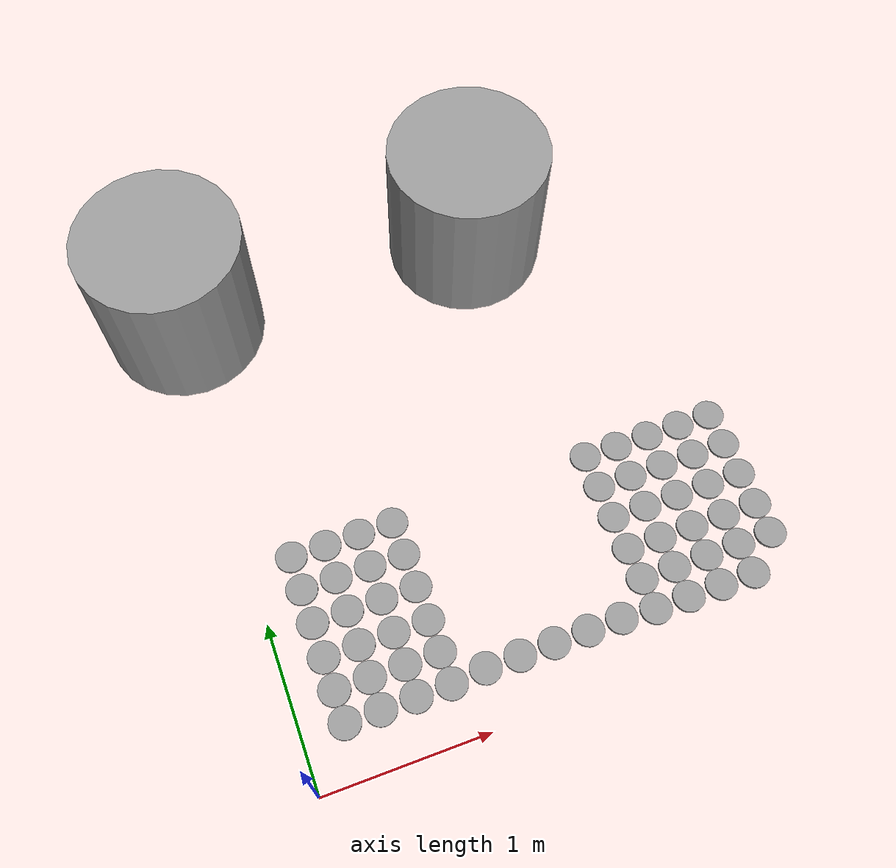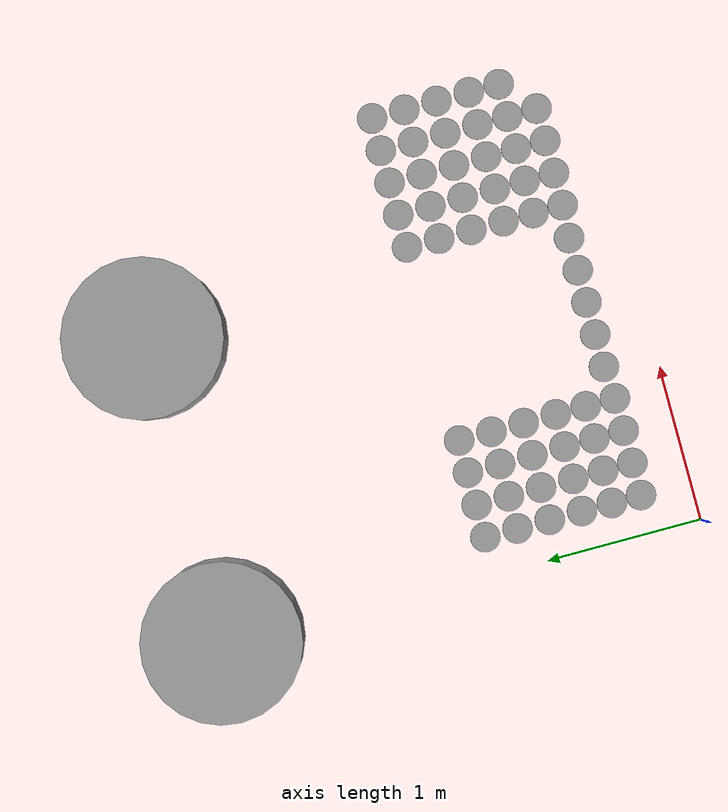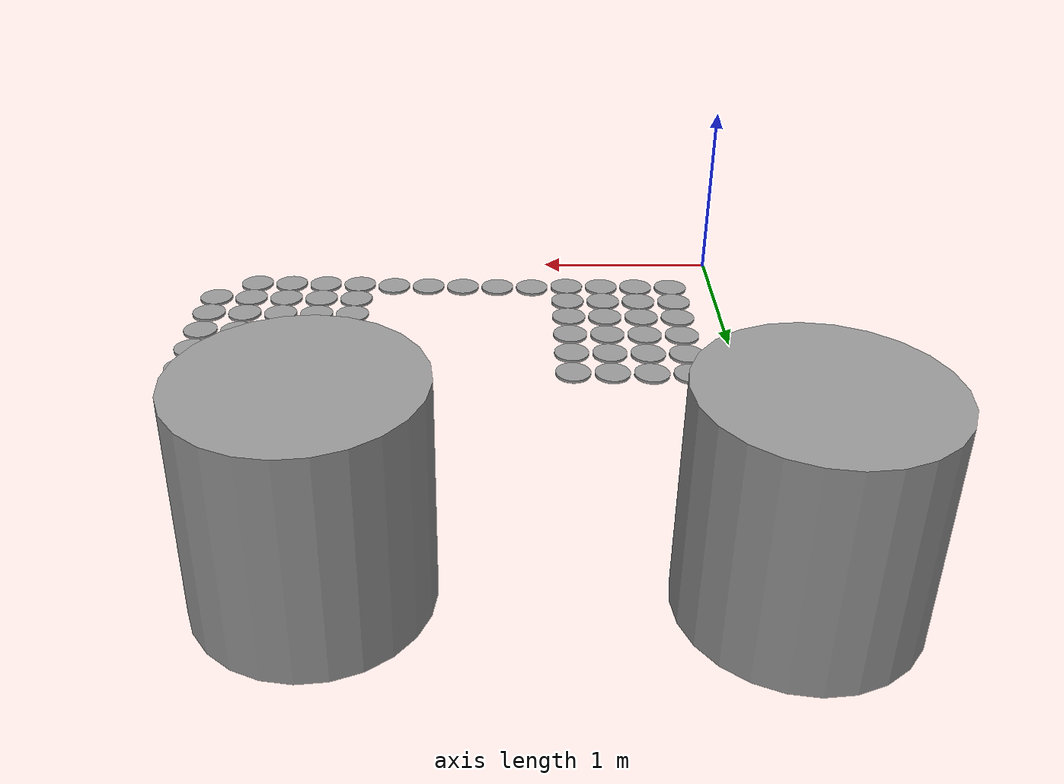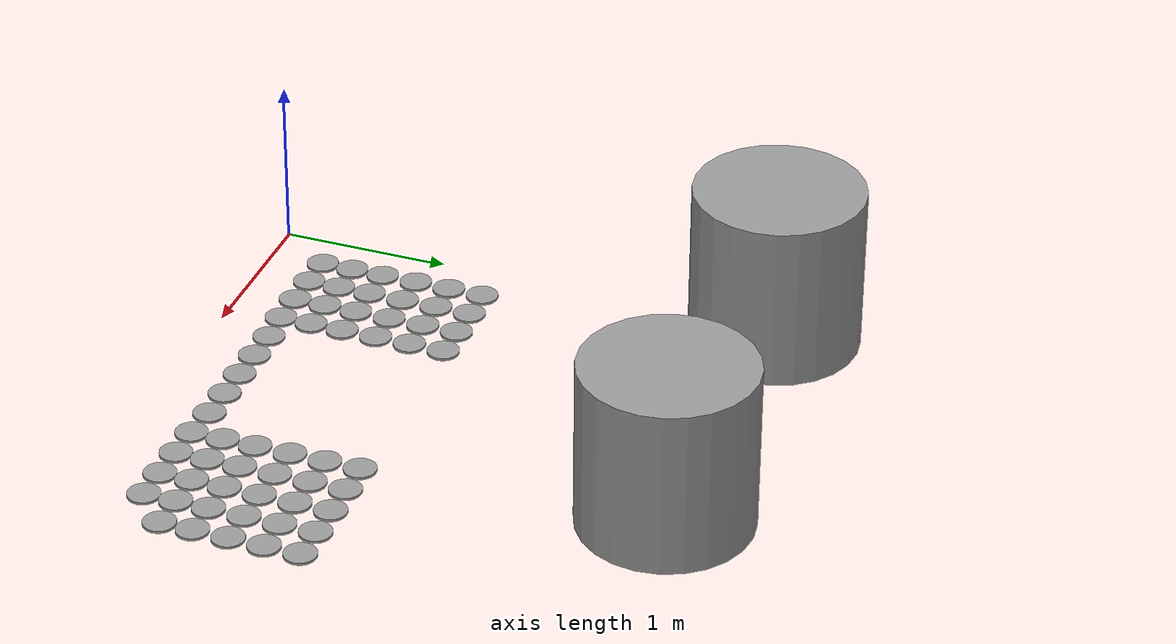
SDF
<sdf version="1.6">
 <world name="default">
  <model name="unit_cylinder_clone_125">
   <pose>0.25 0.515077 0.008117 0 -0 0</pose>
   <link name="link">
    <inertial>
     <mass>1</mass>
     <inertia><ixx>0.145833</ixx><ixy>0</ixy><ixz>0</ixz><iyy>0.145833</iyy><iyz>0</iyz><izz>0.125</izz></inertia>
    </inertial>
    <collision name="collision">
     <geometry><cylinder><radius>0.0950718</radius><length>0.0162339</length></cylinder></geometry>
     <max_contacts>5</max_contacts>
    </collision>
    <visual name="visual">
     <geometry><cylinder><radius>0.0950718</radius><length>0.0162339</length></cylinder></geometry>
     <material>
      <script><name>Gazebo/Grey</name><uri>file://media/materials/scripts/gazebo.material</uri></script>
     </material>
    </visual>
   </link>
  </model>
  <model name="unit_cylinder_clone_126">
   <pose>0.25 0.71 0.008117 0 -0 0</pose>
   <link name="link">
    <inertial>
     <mass>1</mass>
     <inertia><ixx>0.145833</ixx><ixy>0</ixy><ixz>0</ixz><iyy>0.145833</iyy><iyz>0</iyz><izz>0.125</izz></inertia>
    </inertial>
    <collision name="collision">
     <geometry><cylinder><radius>0.0950718</radius><length>0.0162339</length></cylinder></geometry>
     <max_contacts>5</max_contacts>
    </collision>
    <visual name="visual">
     <geometry><cylinder><radius>0.0950718</radius><length>0.0162339</length></cylinder></geometry>
     <material>
      <script><name>Gazebo/Grey</name><uri>file://media/materials/scripts/gazebo.material</uri></script>
     </material>
    </visual>
   </link>
  </model>
  <model name="unit_cylinder_clone_127">
   <pose>0.25 0.92 0.008117 0 -0 0</pose>
   <link name="link">
    <inertial>
     <mass>1</mass>
     <inertia><ixx>0.145833</ixx><ixy>0</ixy><ixz>0</ixz><iyy>0.145833</iyy><iyz>0</iyz><izz>0.125</izz></inertia>
    </inertial>
    <collision name="collision">
     <geometry><cylinder><radius>0.0950718</radius><length>0.0162339</length></cylinder></geometry>
     <max_contacts>5</max_contacts>
    </collision>
    <visual name="visual">
     <geometry><cylinder><radius>0.0950718</radius><length>0.0162339</length></cylinder></geometry>
     <material>
      <script><name>Gazebo/Grey</name><uri>file://media/materials/scripts/gazebo.material</uri></script>
     </material>
    </visual>
   </link>
  </model>
  <model name="unit_cylinder_clone_128">
   <pose>0.25 1.13 0.008117 0 -0 0</pose>
   <link name="link">
    <inertial>
     <mass>1</mass>
     <inertia><ixx>0.145833</ixx><ixy>0</ixy><ixz>0</ixz><iyy>0.145833</iyy><iyz>0</iyz><izz>0.125</izz></inertia>
    </inertial>
    <collision name="collision">
     <geometry><cylinder><radius>0.0950718</radius><length>0.0162339</length></cylinder></geometry>
     <max_contacts>5</max_contacts>
    </collision>
    <visual name="visual">
     <geometry><cylinder><radius>0.0950718</radius><length>0.0162339</length></cylinder></geometry>
     <material>
      <script><name>Gazebo/Grey</name><uri>file://media/materials/scripts/gazebo.material</uri></script>
     </material>
    </visual>
   </link>
  </model>
  <model name="unit_cylinder_clone_129">
   <pose>0.25 1.34 0.008117 0 -0 0</pose>
   <link name="link">
    <inertial>
     <mass>1</mass>
     <inertia><ixx>0.145833</ixx><ixy>0</ixy><ixz>0</ixz><iyy>0.145833</iyy><iyz>0</iyz><izz>0.125</izz></inertia>
    </inertial>
    <collision name="collision">
     <geometry><cylinder><radius>0.0950718</radius><length>0.0162339</length></cylinder></geometry>
     <max_contacts>5</max_contacts>
    </collision>
    <visual name="visual">
     <geometry><cylinder><radius>0.0950718</radius><length>0.0162339</length></cylinder></geometry>
     <material>
      <script><name>Gazebo/Grey</name><uri>file://media/materials/scripts/gazebo.material</uri></script>
     </material>
    </visual>
   </link>
  </model>
  <model name="unit_cylinder_clone_130">
   <pose>0.46 0.515077 0.008117 0 -0 0</pose>
   <link name="link">
    <inertial>
     <mass>1</mass>
     <inertia><ixx>0.145833</ixx><ixy>0</ixy><ixz>0</ixz><iyy>0.145833</iyy><iyz>0</iyz><izz>0.125</izz></inertia>
    </inertial>
    <collision name="collision">
     <geometry><cylinder><radius>0.0950718</radius><length>0.0162339</length></cylinder></geometry>
     <max_contacts>5</max_contacts>
    </collision>
    <visual name="visual">
     <geometry><cylinder><radius>0.0950718</radius><length>0.0162339</length></cylinder></geometry>
     <material>
      <script><name>Gazebo/Grey</name><uri>file://media/materials/scripts/gazebo.material</uri></script>
     </material>
    </visual>
   </link>
  </model>
  <model name="unit_cylinder_clone_131">
   <pose>0.46 0.71 0.008117 0 -0 0</pose>
   <link name="link">
    <inertial>
     <mass>1</mass>
     <inertia><ixx>0.145833</ixx><ixy>0</ixy><ixz>0</ixz><iyy>0.145833</iyy><iyz>0</iyz><izz>0.125</izz></inertia>
    </inertial>
    <collision name="collision">
     <geometry><cylinder><radius>0.0950718</radius><length>0.0162339</length></cylinder></geometry>
     <max_contacts>5</max_contacts>
    </collision>
    <visual name="visual">
     <geometry><cylinder><radius>0.0950718</radius><length>0.0162339</length></cylinder></geometry>
     <material>
      <script><name>Gazebo/Grey</name><uri>file://media/materials/scripts/gazebo.material</uri></script>
     </material>
    </visual>
   </link>
  </model>
  <model name="unit_cylinder_clone_132">
   <pose>0.46 0.92 0.008117 0 -0 0</pose>
   <link name="link">
    <inertial>
     <mass>1</mass>
     <inertia><ixx>0.145833</ixx><ixy>0</ixy><ixz>0</ixz><iyy>0.145833</iyy><iyz>0</iyz><izz>0.125</izz></inertia>
    </inertial>
    <collision name="collision">
     <geometry><cylinder><radius>0.0950718</radius><length>0.0162339</length></cylinder></geometry>
     <max_contacts>5</max_contacts>
    </collision>
    <visual name="visual">
     <geometry><cylinder><radius>0.0950718</radius><length>0.0162339</length></cylinder></geometry>
     <material>
      <script><name>Gazebo/Grey</name><uri>file://media/materials/scripts/gazebo.material</uri></script>
     </material>
    </visual>
   </link>
  </model>
  <model name="unit_cylinder_clone_133">
   <pose>0.46 1.13 0.008117 0 -0 0</pose>
   <link name="link">
    <inertial>
     <mass>1</mass>
     <inertia><ixx>0.145833</ixx><ixy>0</ixy><ixz>0</ixz><iyy>0.145833</iyy><iyz>0</iyz><izz>0.125</izz></inertia>
    </inertial>
    <collision name="collision">
     <geometry><cylinder><radius>0.0950718</radius><length>0.0162339</length></cylinder></geometry>
     <max_contacts>5</max_contacts>
    </collision>
    <visual name="visual">
     <geometry><cylinder><radius>0.0950718</radius><length>0.0162339</length></cylinder></geometry>
     <material>
      <script><name>Gazebo/Grey</name><uri>file://media/materials/scripts/gazebo.material</uri></script>
     </material>
    </visual>
   </link>
  </model>
  <model name="unit_cylinder_clone_134">
   <pose>0.46 1.34 0.008117 0 -0 0</pose>
   <link name="link">
    <inertial>
     <mass>1</mass>
     <inertia><ixx>0.145833</ixx><ixy>0</ixy><ixz>0</ixz><iyy>0.145833</iyy><iyz>0</iyz><izz>0.125</izz></inertia>
    </inertial>
    <collision name="collision">
     <geometry><cylinder><radius>0.0950718</radius><length>0.0162339</length></cylinder></geometry>
     <max_contacts>5</max_contacts>
    </collision>
    <visual name="visual">
     <geometry><cylinder><radius>0.0950718</radius><length>0.0162339</length></cylinder></geometry>
     <material>
      <script><name>Gazebo/Grey</name><uri>file://media/materials/scripts/gazebo.material</uri></script>
     </material>
    </visual>
   </link>
  </model>
  <model name="unit_cylinder_clone_135">
   <pose>0.67 0.515077 0.008117 0 -0 0</pose>
   <link name="link">
    <inertial>
     <mass>1</mass>
     <inertia><ixx>0.145833</ixx><ixy>0</ixy><ixz>0</ixz><iyy>0.145833</iyy><iyz>0</iyz><izz>0.125</izz></inertia>
    </inertial>
    <collision name="collision">
     <geometry><cylinder><radius>0.0950718</radius><length>0.0162339</length></cylinder></geometry>
     <max_contacts>5</max_contacts>
    </collision>
    <visual name="visual">
     <geometry><cylinder><radius>0.0950718</radius><length>0.0162339</length></cylinder></geometry>
     <material>
      <script><name>Gazebo/Grey</name><uri>file://media/materials/scripts/gazebo.material</uri></script>
     </material>
    </visual>
   </link>
  </model>
  <model name="unit_cylinder_clone_136">
   <pose>0.67 0.71 0.008117 0 -0 0</pose>
   <link name="link">
    <inertial>
     <mass>1</mass>
     <inertia><ixx>0.145833</ixx><ixy>0</ixy><ixz>0</ixz><iyy>0.145833</iyy><iyz>0</iyz><izz>0.125</izz></inertia>
    </inertial>
    <collision name="collision">
     <geometry><cylinder><radius>0.0950718</radius><length>0.0162339</length></cylinder></geometry>
     <max_contacts>5</max_contacts>
    </collision>
    <visual name="visual">
     <geometry><cylinder><radius>0.0950718</radius><length>0.0162339</length></cylinder></geometry>
     <material>
      <script><name>Gazebo/Grey</name><uri>file://media/materials/scripts/gazebo.material</uri></script>
     </material>
    </visual>
   </link>
  </model>
  <model name="unit_cylinder_clone_137">
   <pose>0.67 0.92 0.008117 0 -0 0</pose>
   <link name="link">
    <inertial>
     <mass>1</mass>
     <inertia><ixx>0.145833</ixx><ixy>0</ixy><ixz>0</ixz><iyy>0.145833</iyy><iyz>0</iyz><izz>0.125</izz></inertia>
    </inertial>
    <collision name="collision">
     <geometry><cylinder><radius>0.0950718</radius><length>0.0162339</length></cylinder></geometry>
     <max_contacts>5</max_contacts>
    </collision>
    <visual name="visual">
     <geometry><cylinder><radius>0.0950718</radius><length>0.0162339</length></cylinder></geometry>
     <material>
      <script><name>Gazebo/Grey</name><uri>file://media/materials/scripts/gazebo.material</uri></script>
     </material>
    </visual>
   </link>
  </model>
  <model name="unit_cylinder_clone_138">
   <pose>0.67 1.13 0.008117 0 -0 0</pose>
   <link name="link">
    <inertial>
     <mass>1</mass>
     <inertia><ixx>0.145833</ixx><ixy>0</ixy><ixz>0</ixz><iyy>0.145833</iyy><iyz>0</iyz><izz>0.125</izz></inertia>
    </inertial>
    <collision name="collision">
     <geometry><cylinder><radius>0.0950718</radius><length>0.0162339</length></cylinder></geometry>
     <max_contacts>5</max_contacts>
    </collision>
    <visual name="visual">
     <geometry><cylinder><radius>0.0950718</radius><length>0.0162339</length></cylinder></geometry>
     <material>
      <script><name>Gazebo/Grey</name><uri>file://media/materials/scripts/gazebo.material</uri></script>
     </material>
    </visual>
   </link>
  </model>
  <model name="unit_cylinder_clone_139">
   <pose>0.67 1.34 0.008117 0 -0 0</pose>
   <link name="link">
    <inertial>
     <mass>1</mass>
     <inertia><ixx>0.145833</ixx><ixy>0</ixy><ixz>0</ixz><iyy>0.145833</iyy><iyz>0</iyz><izz>0.125</izz></inertia>
    </inertial>
    <collision name="collision">
     <geometry><cylinder><radius>0.0950718</radius><length>0.0162339</length></cylinder></geometry>
     <max_contacts>5</max_contacts>
    </collision>
    <visual name="visual">
     <geometry><cylinder><radius>0.0950718</radius><length>0.0162339</length></cylinder></geometry>
     <material>
      <script><name>Gazebo/Grey</name><uri>file://media/materials/scripts/gazebo.material</uri></script>
     </material>
    </visual>
   </link>
  </model>
  <model name="unit_cylinder_clone_140">
   <pose>0.88 0.515077 0.008117 0 -0 0</pose>
   <link name="link">
    <inertial>
     <mass>1</mass>
     <inertia><ixx>0.145833</ixx><ixy>0</ixy><ixz>0</ixz><iyy>0.145833</iyy><iyz>0</iyz><izz>0.125</izz></inertia>
    </inertial>
    <collision name="collision">
     <geometry><cylinder><radius>0.0950718</radius><length>0.0162339</length></cylinder></geometry>
     <max_contacts>5</max_contacts>
    </collision>
    <visual name="visual">
     <geometry><cylinder><radius>0.0950718</radius><length>0.0162339</length></cylinder></geometry>
     <material>
      <script><name>Gazebo/Grey</name><uri>file://media/materials/scripts/gazebo.material</uri></script>
     </material>
    </visual>
   </link>
  </model>
  <model name="unit_cylinder_clone_141">
   <pose>0.88 0.71 0.008117 0 -0 0</pose>
   <link name="link">
    <inertial>
     <mass>1</mass>
     <inertia><ixx>0.145833</ixx><ixy>0</ixy><ixz>0</ixz><iyy>0.145833</iyy><iyz>0</iyz><izz>0.125</izz></inertia>
    </inertial>
    <collision name="collision">
     <geometry><cylinder><radius>0.0950718</radius><length>0.0162339</length></cylinder></geometry>
     <max_contacts>5</max_contacts>
    </collision>
    <visual name="visual">
     <geometry><cylinder><radius>0.0950718</radius><length>0.0162339</length></cylinder></geometry>
     <material>
      <script><name>Gazebo/Grey</name><uri>file://media/materials/scripts/gazebo.material</uri></script>
     </material>
    </visual>
   </link>
  </model>
  <model name="unit_cylinder_clone_142">
   <pose>0.88 0.92 0.008117 0 -0 0</pose>
   <link name="link">
    <inertial>
     <mass>1</mass>
     <inertia><ixx>0.145833</ixx><ixy>0</ixy><ixz>0</ixz><iyy>0.145833</iyy><iyz>0</iyz><izz>0.125</izz></inertia>
    </inertial>
    <collision name="collision">
     <geometry><cylinder><radius>0.0950718</radius><length>0.0162339</length></cylinder></geometry>
     <max_contacts>5</max_contacts>
    </collision>
    <visual name="visual">
     <geometry><cylinder><radius>0.0950718</radius><length>0.0162339</length></cylinder></geometry>
     <material>
      <script><name>Gazebo/Grey</name><uri>file://media/materials/scripts/gazebo.material</uri></script>
     </material>
    </visual>
   </link>
  </model>
  <model name="unit_cylinder_clone_143">
   <pose>0.88 1.13 0.008117 0 -0 0</pose>
   <link name="link">
    <inertial>
     <mass>1</mass>
     <inertia><ixx>0.145833</ixx><ixy>0</ixy><ixz>0</ixz><iyy>0.145833</iyy><iyz>0</iyz><izz>0.125</izz></inertia>
    </inertial>
    <collision name="collision">
     <geometry><cylinder><radius>0.0950718</radius><length>0.0162339</length></cylinder></geometry>
     <max_contacts>5</max_contacts>
    </collision>
    <visual name="visual">
     <geometry><cylinder><radius>0.0950718</radius><length>0.0162339</length></cylinder></geometry>
     <material>
      <script><name>Gazebo/Grey</name><uri>file://media/materials/scripts/gazebo.material</uri></script>
     </material>
    </visual>
   </link>
  </model>
  <model name="unit_cylinder_clone_144">
   <pose>0.88 1.34 0.008117 0 -0 0</pose>
   <link name="link">
    <inertial>
     <mass>1</mass>
     <inertia><ixx>0.145833</ixx><ixy>0</ixy><ixz>0</ixz><iyy>0.145833</iyy><iyz>0</iyz><izz>0.125</izz></inertia>
    </inertial>
    <collision name="collision">
     <geometry><cylinder><radius>0.0950718</radius><length>0.0162339</length></cylinder></geometry>
     <max_contacts>5</max_contacts>
    </collision>
    <visual name="visual">
     <geometry><cylinder><radius>0.0950718</radius><length>0.0162339</length></cylinder></geometry>
     <material>
      <script><name>Gazebo/Grey</name><uri>file://media/materials/scripts/gazebo.material</uri></script>
     </material>
    </visual>
   </link>
  </model>
  <model name="unit_cylinder_clone_170">
   <pose>2.14 0.515077 0.008117 0 -0 0</pose>
   <link name="link">
    <inertial>
     <mass>1</mass>
     <inertia><ixx>0.145833</ixx><ixy>0</ixy><ixz>0</ixz><iyy>0.145833</iyy><iyz>0</iyz><izz>0.125</izz></inertia>
    </inertial>
    <collision name="collision">
     <geometry><cylinder><radius>0.0950718</radius><length>0.0162339</length></cylinder></geometry>
     <max_contacts>5</max_contacts>
    </collision>
    <visual name="visual">
     <geometry><cylinder><radius>0.0950718</radius><length>0.0162339</length></cylinder></geometry>
     <material>
      <script><name>Gazebo/Grey</name><uri>file://media/materials/scripts/gazebo.material</uri></script>
     </material>
    </visual>
   </link>
  </model>
  <model name="unit_cylinder_clone_171">
   <pose>2.14 0.71 0.008117 0 -0 0</pose>
   <link name="link">
    <inertial>
     <mass>1</mass>
     <inertia><ixx>0.145833</ixx><ixy>0</ixy><ixz>0</ixz><iyy>0.145833</iyy><iyz>0</iyz><izz>0.125</izz></inertia>
    </inertial>
    <collision name="collision">
     <geometry><cylinder><radius>0.0950718</radius><length>0.0162339</length></cylinder></geometry>
     <max_contacts>5</max_contacts>
    </collision>
    <visual name="visual">
     <geometry><cylinder><radius>0.0950718</radius><length>0.0162339</length></cylinder></geometry>
     <material>
      <script><name>Gazebo/Grey</name><uri>file://media/materials/scripts/gazebo.material</uri></script>
     </material>
    </visual>
   </link>
  </model>
  <model name="unit_cylinder_clone_172">
   <pose>2.14 0.92 0.008117 0 -0 0</pose>
   <link name="link">
    <inertial>
     <mass>1</mass>
     <inertia><ixx>0.145833</ixx><ixy>0</ixy><ixz>0</ixz><iyy>0.145833</iyy><iyz>0</iyz><izz>0.125</izz></inertia>
    </inertial>
    <collision name="collision">
     <geometry><cylinder><radius>0.0950718</radius><length>0.0162339</length></cylinder></geometry>
     <max_contacts>5</max_contacts>
    </collision>
    <visual name="visual">
     <geometry><cylinder><radius>0.0950718</radius><length>0.0162339</length></cylinder></geometry>
     <material>
      <script><name>Gazebo/Grey</name><uri>file://media/materials/scripts/gazebo.material</uri></script>
     </material>
    </visual>
   </link>
  </model>
  <model name="unit_cylinder_clone_173">
   <pose>2.14 1.13 0.008117 0 -0 0</pose>
   <link name="link">
    <inertial>
     <mass>1</mass>
     <inertia><ixx>0.145833</ixx><ixy>0</ixy><ixz>0</ixz><iyy>0.145833</iyy><iyz>0</iyz><izz>0.125</izz></inertia>
    </inertial>
    <collision name="collision">
     <geometry><cylinder><radius>0.0950718</radius><length>0.0162339</length></cylinder></geometry>
     <max_contacts>5</max_contacts>
    </collision>
    <visual name="visual">
     <geometry><cylinder><radius>0.0950718</radius><length>0.0162339</length></cylinder></geometry>
     <material>
      <script><name>Gazebo/Grey</name><uri>file://media/materials/scripts/gazebo.material</uri></script>
     </material>
    </visual>
   </link>
  </model>
  <model name="unit_cylinder_clone_174">
   <pose>2.14 1.34 0.008117 0 -0 0</pose>
   <link name="link">
    <inertial>
     <mass>1</mass>
     <inertia><ixx>0.145833</ixx><ixy>0</ixy><ixz>0</ixz><iyy>0.145833</iyy><iyz>0</iyz><izz>0.125</izz></inertia>
    </inertial>
    <collision name="collision">
     <geometry><cylinder><radius>0.0950718</radius><length>0.0162339</length></cylinder></geometry>
     <max_contacts>5</max_contacts>
    </collision>
    <visual name="visual">
     <geometry><cylinder><radius>0.0950718</radius><length>0.0162339</length></cylinder></geometry>
     <material>
      <script><name>Gazebo/Grey</name><uri>file://media/materials/scripts/gazebo.material</uri></script>
     </material>
    </visual>
   </link>
  </model>
  <model name="unit_cylinder_clone_175">
   <pose>2.35 0.515077 0.008117 0 -0 0</pose>
   <link name="link">
    <inertial>
     <mass>1</mass>
     <inertia><ixx>0.145833</ixx><ixy>0</ixy><ixz>0</ixz><iyy>0.145833</iyy><iyz>0</iyz><izz>0.125</izz></inertia>
    </inertial>
    <collision name="collision">
     <geometry><cylinder><radius>0.0950718</radius><length>0.0162339</length></cylinder></geometry>
     <max_contacts>5</max_contacts>
    </collision>
    <visual name="visual">
     <geometry><cylinder><radius>0.0950718</radius><length>0.0162339</length></cylinder></geometry>
     <material>
      <script><name>Gazebo/Grey</name><uri>file://media/materials/scripts/gazebo.material</uri></script>
     </material>
    </visual>
   </link>
  </model>
  <model name="unit_cylinder_clone_176">
   <pose>2.35 0.71 0.008117 0 -0 0</pose>
   <link name="link">
    <inertial>
     <mass>1</mass>
     <inertia><ixx>0.145833</ixx><ixy>0</ixy><ixz>0</ixz><iyy>0.145833</iyy><iyz>0</iyz><izz>0.125</izz></inertia>
    </inertial>
    <collision name="collision">
     <geometry><cylinder><radius>0.0950718</radius><length>0.0162339</length></cylinder></geometry>
     <max_contacts>5</max_contacts>
    </collision>
    <visual name="visual">
     <geometry><cylinder><radius>0.0950718</radius><length>0.0162339</length></cylinder></geometry>
     <material>
      <script><name>Gazebo/Grey</name><uri>file://media/materials/scripts/gazebo.material</uri></script>
     </material>
    </visual>
   </link>
  </model>
  <model name="unit_cylinder_clone_177">
   <pose>2.35 0.92 0.008117 0 -0 0</pose>
   <link name="link">
    <inertial>
     <mass>1</mass>
     <inertia><ixx>0.145833</ixx><ixy>0</ixy><ixz>0</ixz><iyy>0.145833</iyy><iyz>0</iyz><izz>0.125</izz></inertia>
    </inertial>
    <collision name="collision">
     <geometry><cylinder><radius>0.0950718</radius><length>0.0162339</length></cylinder></geometry>
     <max_contacts>5</max_contacts>
    </collision>
    <visual name="visual">
     <geometry><cylinder><radius>0.0950718</radius><length>0.0162339</length></cylinder></geometry>
     <material>
      <script><name>Gazebo/Grey</name><uri>file://media/materials/scripts/gazebo.material</uri></script>
     </material>
    </visual>
   </link>
  </model>
  <model name="unit_cylinder_clone_178">
   <pose>2.35 1.13 0.008117 0 -0 0</pose>
   <link name="link">
    <inertial>
     <mass>1</mass>
     <inertia><ixx>0.145833</ixx><ixy>0</ixy><ixz>0</ixz><iyy>0.145833</iyy><iyz>0</iyz><izz>0.125</izz></inertia>
    </inertial>
    <collision name="collision">
     <geometry><cylinder><radius>0.0950718</radius><length>0.0162339</length></cylinder></geometry>
     <max_contacts>5</max_contacts>
    </collision>
    <visual name="visual">
     <geometry><cylinder><radius>0.0950718</radius><length>0.0162339</length></cylinder></geometry>
     <material>
      <script><name>Gazebo/Grey</name><uri>file://media/materials/scripts/gazebo.material</uri></script>
     </material>
    </visual>
   </link>
  </model>
  <model name="unit_cylinder_clone_179">
   <pose>2.35 1.34 0.008117 0 -0 0</pose>
   <link name="link">
    <inertial>
     <mass>1</mass>
     <inertia><ixx>0.145833</ixx><ixy>0</ixy><ixz>0</ixz><iyy>0.145833</iyy><iyz>0</iyz><izz>0.125</izz></inertia>
    </inertial>
    <collision name="collision">
     <geometry><cylinder><radius>0.0950718</radius><length>0.0162339</length></cylinder></geometry>
     <max_contacts>5</max_contacts>
    </collision>
    <visual name="visual">
     <geometry><cylinder><radius>0.0950718</radius><length>0.0162339</length></cylinder></geometry>
     <material>
      <script><name>Gazebo/Grey</name><uri>file://media/materials/scripts/gazebo.material</uri></script>
     </material>
    </visual>
   </link>
  </model>
  <model name="unit_cylinder_clone_180">
   <pose>2.56 0.515077 0.008117 0 -0 0</pose>
   <link name="link">
    <inertial>
     <mass>1</mass>
     <inertia><ixx>0.145833</ixx><ixy>0</ixy><ixz>0</ixz><iyy>0.145833</iyy><iyz>0</iyz><izz>0.125</izz></inertia>
    </inertial>
    <collision name="collision">
     <geometry><cylinder><radius>0.0950718</radius><length>0.0162339</length></cylinder></geometry>
     <max_contacts>5</max_contacts>
    </collision>
    <visual name="visual">
     <geometry><cylinder><radius>0.0950718</radius><length>0.0162339</length></cylinder></geometry>
     <material>
      <script><name>Gazebo/Grey</name><uri>file://media/materials/scripts/gazebo.material</uri></script>
     </material>
    </visual>
   </link>
  </model>
  <model name="unit_cylinder_clone_181">
   <pose>2.56 0.71 0.008117 0 -0 0</pose>
   <link name="link">
    <inertial>
     <mass>1</mass>
     <inertia><ixx>0.145833</ixx><ixy>0</ixy><ixz>0</ixz><iyy>0.145833</iyy><iyz>0</iyz><izz>0.125</izz></inertia>
    </inertial>
    <collision name="collision">
     <geometry><cylinder><radius>0.0950718</radius><length>0.0162339</length></cylinder></geometry>
     <max_contacts>5</max_contacts>
    </collision>
    <visual name="visual">
     <geometry><cylinder><radius>0.0950718</radius><length>0.0162339</length></cylinder></geometry>
     <material>
      <script><name>Gazebo/Grey</name><uri>file://media/materials/scripts/gazebo.material</uri></script>
     </material>
    </visual>
   </link>
  </model>
  <model name="unit_cylinder_clone_182">
   <pose>2.56 0.92 0.008117 0 -0 0</pose>
   <link name="link">
    <inertial>
     <mass>1</mass>
     <inertia><ixx>0.145833</ixx><ixy>0</ixy><ixz>0</ixz><iyy>0.145833</iyy><iyz>0</iyz><izz>0.125</izz></inertia>
    </inertial>
    <collision name="collision">
     <geometry><cylinder><radius>0.0950718</radius><length>0.0162339</length></cylinder></geometry>
     <max_contacts>5</max_contacts>
    </collision>
    <visual name="visual">
     <geometry><cylinder><radius>0.0950718</radius><length>0.0162339</length></cylinder></geometry>
     <material>
      <script><name>Gazebo/Grey</name><uri>file://media/materials/scripts/gazebo.material</uri></script>
     </material>
    </visual>
   </link>
  </model>
  <model name="unit_cylinder_clone_183">
   <pose>2.56 1.13 0.008117 0 -0 0</pose>
   <link name="link">
    <inertial>
     <mass>1</mass>
     <inertia><ixx>0.145833</ixx><ixy>0</ixy><ixz>0</ixz><iyy>0.145833</iyy><iyz>0</iyz><izz>0.125</izz></inertia>
    </inertial>
    <collision name="collision">
     <geometry><cylinder><radius>0.0950718</radius><length>0.0162339</length></cylinder></geometry>
     <max_contacts>5</max_contacts>
    </collision>
    <visual name="visual">
     <geometry><cylinder><radius>0.0950718</radius><length>0.0162339</length></cylinder></geometry>
     <material>
      <script><name>Gazebo/Grey</name><uri>file://media/materials/scripts/gazebo.material</uri></script>
     </material>
    </visual>
   </link>
  </model>
  <model name="unit_cylinder_clone_184">
   <pose>2.56 1.34 0.008117 0 -0 0</pose>
   <link name="link">
    <inertial>
     <mass>1</mass>
     <inertia><ixx>0.145833</ixx><ixy>0</ixy><ixz>0</ixz><iyy>0.145833</iyy><iyz>0</iyz><izz>0.125</izz></inertia>
    </inertial>
    <collision name="collision">
     <geometry><cylinder><radius>0.0950718</radius><length>0.0162339</length></cylinder></geometry>
     <max_contacts>5</max_contacts>
    </collision>
    <visual name="visual">
     <geometry><cylinder><radius>0.0950718</radius><length>0.0162339</length></cylinder></geometry>
     <material>
      <script><name>Gazebo/Grey</name><uri>file://media/materials/scripts/gazebo.material</uri></script>
     </material>
    </visual>
   </link>
  </model>
  <model name="unit_cylinder_clone_185">
   <pose>2.77 0.515077 0.008117 0 -0 0</pose>
   <link name="link">
    <inertial>
     <mass>1</mass>
     <inertia><ixx>0.145833</ixx><ixy>0</ixy><ixz>0</ixz><iyy>0.145833</iyy><iyz>0</iyz><izz>0.125</izz></inertia>
    </inertial>
    <collision name="collision">
     <geometry><cylinder><radius>0.0950718</radius><length>0.0162339</length></cylinder></geometry>
     <max_contacts>5</max_contacts>
    </collision>
    <visual name="visual">
     <geometry><cylinder><radius>0.0950718</radius><length>0.0162339</length></cylinder></geometry>
     <material>
      <script><name>Gazebo/Grey</name><uri>file://media/materials/scripts/gazebo.material</uri></script>
     </material>
    </visual>
   </link>
  </model>
  <model name="unit_cylinder_clone_186">
   <pose>2.77 0.71 0.008117 0 -0 0</pose>
   <link name="link">
    <inertial>
     <mass>1</mass>
     <inertia><ixx>0.145833</ixx><ixy>0</ixy><ixz>0</ixz><iyy>0.145833</iyy><iyz>0</iyz><izz>0.125</izz></inertia>
    </inertial>
    <collision name="collision">
     <geometry><cylinder><radius>0.0950718</radius><length>0.0162339</length></cylinder></geometry>
     <max_contacts>5</max_contacts>
    </collision>
    <visual name="visual">
     <geometry><cylinder><radius>0.0950718</radius><length>0.0162339</length></cylinder></geometry>
     <material>
      <script><name>Gazebo/Grey</name><uri>file://media/materials/scripts/gazebo.material</uri></script>
     </material>
    </visual>
   </link>
  </model>
  <model name="unit_cylinder_clone_187">
   <pose>2.77 0.92 0.008117 0 -0 0</pose>
   <link name="link">
    <inertial>
     <mass>1</mass>
     <inertia><ixx>0.145833</ixx><ixy>0</ixy><ixz>0</ixz><iyy>0.145833</iyy><iyz>0</iyz><izz>0.125</izz></inertia>
    </inertial>
    <collision name="collision">
     <geometry><cylinder><radius>0.0950718</radius><length>0.0162339</length></cylinder></geometry>
     <max_contacts>5</max_contacts>
    </collision>
    <visual name="visual">
     <geometry><cylinder><radius>0.0950718</radius><length>0.0162339</length></cylinder></geometry>
     <material>
      <script><name>Gazebo/Grey</name><uri>file://media/materials/scripts/gazebo.material</uri></script>
     </material>
    </visual>
   </link>
  </model>
  <model name="unit_cylinder_clone_188">
   <pose>2.77 1.13 0.008117 0 -0 0</pose>
   <link name="link">
    <inertial>
     <mass>1</mass>
     <inertia><ixx>0.145833</ixx><ixy>0</ixy><ixz>0</ixz><iyy>0.145833</iyy><iyz>0</iyz><izz>0.125</izz></inertia>
    </inertial>
    <collision name="collision">
     <geometry><cylinder><radius>0.0950718</radius><length>0.0162339</length></cylinder></geometry>
     <max_contacts>5</max_contacts>
    </collision>
    <visual name="visual">
     <geometry><cylinder><radius>0.0950718</radius><length>0.0162339</length></cylinder></geometry>
     <material>
      <script><name>Gazebo/Grey</name><uri>file://media/materials/scripts/gazebo.material</uri></script>
     </material>
    </visual>
   </link>
  </model>
  <model name="unit_cylinder_clone_189">
   <pose>2.77 1.34 0.008117 0 -0 0</pose>
   <link name="link">
    <inertial>
     <mass>1</mass>
     <inertia><ixx>0.145833</ixx><ixy>0</ixy><ixz>0</ixz><iyy>0.145833</iyy><iyz>0</iyz><izz>0.125</izz></inertia>
    </inertial>
    <collision name="collision">
     <geometry><cylinder><radius>0.0950718</radius><length>0.0162339</length></cylinder></geometry>
     <max_contacts>5</max_contacts>
    </collision>
    <visual name="visual">
     <geometry><cylinder><radius>0.0950718</radius><length>0.0162339</length></cylinder></geometry>
     <material>
      <script><name>Gazebo/Grey</name><uri>file://media/materials/scripts/gazebo.material</uri></script>
     </material>
    </visual>
   </link>
  </model>
  <model name="unit_cylinder_clone_190">
   <pose>2.98 0.515077 0.008117 0 -0 0</pose>
   <link name="link">
    <inertial>
     <mass>1</mass>
     <inertia><ixx>0.145833</ixx><ixy>0</ixy><ixz>0</ixz><iyy>0.145833</iyy><iyz>0</iyz><izz>0.125</izz></inertia>
    </inertial>
    <collision name="collision">
     <geometry><cylinder><radius>0.0950718</radius><length>0.0162339</length></cylinder></geometry>
     <max_contacts>5</max_contacts>
    </collision>
    <visual name="visual">
     <geometry><cylinder><radius>0.0950718</radius><length>0.0162339</length></cylinder></geometry>
     <material>
      <script><name>Gazebo/Grey</name><uri>file://media/materials/scripts/gazebo.material</uri></script>
     </material>
    </visual>
   </link>
  </model>
  <model name="unit_cylinder_clone_191">
   <pose>2.98 0.71 0.008117 0 -0 0</pose>
   <link name="link">
    <inertial>
     <mass>1</mass>
     <inertia><ixx>0.145833</ixx><ixy>0</ixy><ixz>0</ixz><iyy>0.145833</iyy><iyz>0</iyz><izz>0.125</izz></inertia>
    </inertial>
    <collision name="collision">
     <geometry><cylinder><radius>0.0950718</radius><length>0.0162339</length></cylinder></geometry>
     <max_contacts>5</max_contacts>
    </collision>
    <visual name="visual">
     <geometry><cylinder><radius>0.0950718</radius><length>0.0162339</length></cylinder></geometry>
     <material>
      <script><name>Gazebo/Grey</name><uri>file://media/materials/scripts/gazebo.material</uri></script>
     </material>
    </visual>
   </link>
  </model>
  <model name="unit_cylinder_clone_192">
   <pose>2.98 0.92 0.008117 0 -0 0</pose>
   <link name="link">
    <inertial>
     <mass>1</mass>
     <inertia><ixx>0.145833</ixx><ixy>0</ixy><ixz>0</ixz><iyy>0.145833</iyy><iyz>0</iyz><izz>0.125</izz></inertia>
    </inertial>
    <collision name="collision">
     <geometry><cylinder><radius>0.0950718</radius><length>0.0162339</length></cylinder></geometry>
     <max_contacts>5</max_contacts>
    </collision>
    <visual name="visual">
     <geometry><cylinder><radius>0.0950718</radius><length>0.0162339</length></cylinder></geometry>
     <material>
      <script><name>Gazebo/Grey</name><uri>file://media/materials/scripts/gazebo.material</uri></script>
     </material>
    </visual>
   </link>
  </model>
  <model name="unit_cylinder_clone_193">
   <pose>2.98 1.13 0.008117 0 -0 0</pose>
   <link name="link">
    <inertial>
     <mass>1</mass>
     <inertia><ixx>0.145833</ixx><ixy>0</ixy><ixz>0</ixz><iyy>0.145833</iyy><iyz>0</iyz><izz>0.125</izz></inertia>
    </inertial>
    <collision name="collision">
     <geometry><cylinder><radius>0.0950718</radius><length>0.0162339</length></cylinder></geometry>
     <max_contacts>5</max_contacts>
    </collision>
    <visual name="visual">
     <geometry><cylinder><radius>0.0950718</radius><length>0.0162339</length></cylinder></geometry>
     <material>
      <script><name>Gazebo/Grey</name><uri>file://media/materials/scripts/gazebo.material</uri></script>
     </material>
    </visual>
   </link>
  </model>
  <model name="unit_cylinder_clone_194">
   <pose>2.98 1.34 0.008117 0 -0 0</pose>
   <link name="link">
    <inertial>
     <mass>1</mass>
     <inertia><ixx>0.145833</ixx><ixy>0</ixy><ixz>0</ixz><iyy>0.145833</iyy><iyz>0</iyz><izz>0.125</izz></inertia>
    </inertial>
    <collision name="collision">
     <geometry><cylinder><radius>0.0950718</radius><length>0.0162339</length></cylinder></geometry>
     <max_contacts>5</max_contacts>
    </collision>
    <visual name="visual">
     <geometry><cylinder><radius>0.0950718</radius><length>0.0162339</length></cylinder></geometry>
     <material>
      <script><name>Gazebo/Grey</name><uri>file://media/materials/scripts/gazebo.material</uri></script>
     </material>
    </visual>
   </link>
  </model>
  <model name="unit_cylinder_clone_379">
   <pose>0.25 0.324923 0.008117 -0 -0 -0</pose>
   <link name="link">
    <inertial>
     <mass>1</mass>
     <inertia><ixx>0.145833</ixx><ixy>0</ixy><ixz>0</ixz><iyy>0.145833</iyy><iyz>0</iyz><izz>0.125</izz></inertia>
    </inertial>
    <collision name="collision">
     <geometry><cylinder><radius>0.0950718</radius><length>0.0162339</length></cylinder></geometry>
     <max_contacts>5</max_contacts>
    </collision>
    <visual name="visual">
     <geometry><cylinder><radius>0.0950718</radius><length>0.0162339</length></cylinder></geometry>
     <material>
      <script><name>Gazebo/Grey</name><uri>file://media/materials/scripts/gazebo.material</uri></script>
     </material>
    </visual>
   </link>
  </model>
  <model name="unit_cylinder_clone_384">
   <pose>0.46 0.324923 0.008117 -0 -0 -0</pose>
   <link name="link">
    <inertial>
     <mass>1</mass>
     <inertia><ixx>0.145833</ixx><ixy>0</ixy><ixz>0</ixz><iyy>0.145833</iyy><iyz>0</iyz><izz>0.125</izz></inertia>
    </inertial>
    <collision name="collision">
     <geometry><cylinder><radius>0.0950718</radius><length>0.0162339</length></cylinder></geometry>
     <max_contacts>5</max_contacts>
    </collision>
    <visual name="visual">
     <geometry><cylinder><radius>0.0950718</radius><length>0.0162339</length></cylinder></geometry>
     <material>
      <script><name>Gazebo/Grey</name><uri>file://media/materials/scripts/gazebo.material</uri></script>
     </material>
    </visual>
   </link>
  </model>
  <model name="unit_cylinder_clone_389">
   <pose>0.67 0.324923 0.008117 -0 -0 -0</pose>
   <link name="link">
    <inertial>
     <mass>1</mass>
     <inertia><ixx>0.145833</ixx><ixy>0</ixy><ixz>0</ixz><iyy>0.145833</iyy><iyz>0</iyz><izz>0.125</izz></inertia>
    </inertial>
    <collision name="collision">
     <geometry><cylinder><radius>0.0950718</radius><length>0.0162339</length></cylinder></geometry>
     <max_contacts>5</max_contacts>
    </collision>
    <visual name="visual">
     <geometry><cylinder><radius>0.0950718</radius><length>0.0162339</length></cylinder></geometry>
     <material>
      <script><name>Gazebo/Grey</name><uri>file://media/materials/scripts/gazebo.material</uri></script>
     </material>
    </visual>
   </link>
  </model>
  <model name="unit_cylinder_clone_394">
   <pose>0.88 0.324923 0.008117 -0 -0 -0</pose>
   <link name="link">
    <inertial>
     <mass>1</mass>
     <inertia><ixx>0.145833</ixx><ixy>0</ixy><ixz>0</ixz><iyy>0.145833</iyy><iyz>0</iyz><izz>0.125</izz></inertia>
    </inertial>
    <collision name="collision">
     <geometry><cylinder><radius>0.0950718</radius><length>0.0162339</length></cylinder></geometry>
     <max_contacts>5</max_contacts>
    </collision>
    <visual name="visual">
     <geometry><cylinder><radius>0.0950718</radius><length>0.0162339</length></cylinder></geometry>
     <material>
      <script><name>Gazebo/Grey</name><uri>file://media/materials/scripts/gazebo.material</uri></script>
     </material>
    </visual>
   </link>
  </model>
  <model name="unit_cylinder_clone_399">
   <pose>1.09 0.34 0.008117 0 -0 0</pose>
   <link name="link">
    <inertial>
     <mass>1</mass>
     <inertia><ixx>0.145833</ixx><ixy>0</ixy><ixz>0</ixz><iyy>0.145833</iyy><iyz>0</iyz><izz>0.125</izz></inertia>
    </inertial>
    <collision name="collision">
     <geometry><cylinder><radius>0.0950718</radius><length>0.0162339</length></cylinder></geometry>
     <max_contacts>5</max_contacts>
    </collision>
    <visual name="visual">
     <geometry><cylinder><radius>0.0950718</radius><length>0.0162339</length></cylinder></geometry>
     <material>
      <script><name>Gazebo/Grey</name><uri>file://media/materials/scripts/gazebo.material</uri></script>
     </material>
    </visual>
   </link>
  </model>
  <model name="unit_cylinder_clone_404">
   <pose>1.3 0.34 0.008117 0 -0 0</pose>
   <link name="link">
    <inertial>
     <mass>1</mass>
     <inertia><ixx>0.145833</ixx><ixy>0</ixy><ixz>0</ixz><iyy>0.145833</iyy><iyz>0</iyz><izz>0.125</izz></inertia>
    </inertial>
    <collision name="collision">
     <geometry><cylinder><radius>0.0950718</radius><length>0.0162339</length></cylinder></geometry>
     <max_contacts>5</max_contacts>
    </collision>
    <visual name="visual">
     <geometry><cylinder><radius>0.0950718</radius><length>0.0162339</length></cylinder></geometry>
     <material>
      <script><name>Gazebo/Grey</name><uri>file://media/materials/scripts/gazebo.material</uri></script>
     </material>
    </visual>
   </link>
  </model>
  <model name="unit_cylinder_clone_409">
   <pose>1.51 0.34 0.008117 0 -0 0</pose>
   <link name="link">
    <inertial>
     <mass>1</mass>
     <inertia><ixx>0.145833</ixx><ixy>0</ixy><ixz>0</ixz><iyy>0.145833</iyy><iyz>0</iyz><izz>0.125</izz></inertia>
    </inertial>
    <collision name="collision">
     <geometry><cylinder><radius>0.0950718</radius><length>0.0162339</length></cylinder></geometry>
     <max_contacts>5</max_contacts>
    </collision>
    <visual name="visual">
     <geometry><cylinder><radius>0.0950718</radius><length>0.0162339</length></cylinder></geometry>
     <material>
      <script><name>Gazebo/Grey</name><uri>file://media/materials/scripts/gazebo.material</uri></script>
     </material>
    </visual>
   </link>
  </model>
  <model name="unit_cylinder_clone_414">
   <pose>1.72 0.34 0.008117 0 -0 0</pose>
   <link name="link">
    <inertial>
     <mass>1</mass>
     <inertia><ixx>0.145833</ixx><ixy>0</ixy><ixz>0</ixz><iyy>0.145833</iyy><iyz>0</iyz><izz>0.125</izz></inertia>
    </inertial>
    <collision name="collision">
     <geometry><cylinder><radius>0.0950718</radius><length>0.0162339</length></cylinder></geometry>
     <max_contacts>5</max_contacts>
    </collision>
    <visual name="visual">
     <geometry><cylinder><radius>0.0950718</radius><length>0.0162339</length></cylinder></geometry>
     <material>
      <script><name>Gazebo/Grey</name><uri>file://media/materials/scripts/gazebo.material</uri></script>
     </material>
    </visual>
   </link>
  </model>
  <model name="unit_cylinder_clone_419">
   <pose>1.93 0.34 0.008117 0 -0 0</pose>
   <link name="link">
    <inertial>
     <mass>1</mass>
     <inertia><ixx>0.145833</ixx><ixy>0</ixy><ixz>0</ixz><iyy>0.145833</iyy><iyz>0</iyz><izz>0.125</izz></inertia>
    </inertial>
    <collision name="collision">
     <geometry><cylinder><radius>0.0950718</radius><length>0.0162339</length></cylinder></geometry>
     <max_contacts>5</max_contacts>
    </collision>
    <visual name="visual">
     <geometry><cylinder><radius>0.0950718</radius><length>0.0162339</length></cylinder></geometry>
     <material>
      <script><name>Gazebo/Grey</name><uri>file://media/materials/scripts/gazebo.material</uri></script>
     </material>
    </visual>
   </link>
  </model>
  <model name="unit_cylinder_clone_424">
   <pose>2.14 0.324923 0.008117 -0 -0 -0</pose>
   <link name="link">
    <inertial>
     <mass>1</mass>
     <inertia><ixx>0.145833</ixx><ixy>0</ixy><ixz>0</ixz><iyy>0.145833</iyy><iyz>0</iyz><izz>0.125</izz></inertia>
    </inertial>
    <collision name="collision">
     <geometry><cylinder><radius>0.0950718</radius><length>0.0162339</length></cylinder></geometry>
     <max_contacts>5</max_contacts>
    </collision>
    <visual name="visual">
     <geometry><cylinder><radius>0.0950718</radius><length>0.0162339</length></cylinder></geometry>
     <material>
      <script><name>Gazebo/Grey</name><uri>file://media/materials/scripts/gazebo.material</uri></script>
     </material>
    </visual>
   </link>
  </model>
  <model name="unit_cylinder_clone_429">
   <pose>2.35 0.324923 0.008117 -0 -0 -0</pose>
   <link name="link">
    <inertial>
     <mass>1</mass>
     <inertia><ixx>0.145833</ixx><ixy>0</ixy><ixz>0</ixz><iyy>0.145833</iyy><iyz>0</iyz><izz>0.125</izz></inertia>
    </inertial>
    <collision name="collision">
     <geometry><cylinder><radius>0.0950718</radius><length>0.0162339</length></cylinder></geometry>
     <max_contacts>5</max_contacts>
    </collision>
    <visual name="visual">
     <geometry><cylinder><radius>0.0950718</radius><length>0.0162339</length></cylinder></geometry>
     <material>
      <script><name>Gazebo/Grey</name><uri>file://media/materials/scripts/gazebo.material</uri></script>
     </material>
    </visual>
   </link>
  </model>
  <model name="unit_cylinder_clone_434">
   <pose>2.56 0.324923 0.008117 -0 -0 -0</pose>
   <link name="link">
    <inertial>
     <mass>1</mass>
     <inertia><ixx>0.145833</ixx><ixy>0</ixy><ixz>0</ixz><iyy>0.145833</iyy><iyz>0</iyz><izz>0.125</izz></inertia>
    </inertial>
    <collision name="collision">
     <geometry><cylinder><radius>0.0950718</radius><length>0.0162339</length></cylinder></geometry>
     <max_contacts>5</max_contacts>
    </collision>
    <visual name="visual">
     <geometry><cylinder><radius>0.0950718</radius><length>0.0162339</length></cylinder></geometry>
     <material>
      <script><name>Gazebo/Grey</name><uri>file://media/materials/scripts/gazebo.material</uri></script>
     </material>
    </visual>
   </link>
  </model>
  <model name="unit_cylinder_clone_439">
   <pose>2.77 0.324923 0.008117 -0 -0 -0</pose>
   <link name="link">
    <inertial>
     <mass>1</mass>
     <inertia><ixx>0.145833</ixx><ixy>0</ixy><ixz>0</ixz><iyy>0.145833</iyy><iyz>0</iyz><izz>0.125</izz></inertia>
    </inertial>
    <collision name="collision">
     <geometry><cylinder><radius>0.0950718</radius><length>0.0162339</length></cylinder></geometry>
     <max_contacts>5</max_contacts>
    </collision>
    <visual name="visual">
     <geometry><cylinder><radius>0.0950718</radius><length>0.0162339</length></cylinder></geometry>
     <material>
      <script><name>Gazebo/Grey</name><uri>file://media/materials/scripts/gazebo.material</uri></script>
     </material>
    </visual>
   </link>
  </model>
  <model name="unit_cylinder_3">
   <pose>0.072184 3.07759 0.5 -0 -0 -0</pose>
   <link name="link">
    <inertial>
     <mass>1</mass>
     <inertia><ixx>0.145833</ixx><ixy>0</ixy><ixz>0</ixz><iyy>0.145833</iyy><iyz>0</iyz><izz>0.125</izz></inertia>
    </inertial>
    <collision name="collision">
     <geometry><cylinder><radius>0.5</radius><length>1</length></cylinder></geometry>
    </collision>
    <visual name="visual">
     <geometry><cylinder><radius>0.5</radius><length>1</length></cylinder></geometry>
     <material>
      <script><name>Gazebo/Grey</name><uri>file://media/materials/scripts/gazebo.material</uri></script>
     </material>
    </visual>
   </link>
  </model>
  <model name="unit_cylinder_4">
   <pose>1.99416 3.05982 0.499997 3e-06 4e-06 -0</pose>
   <link name="link">
    <inertial>
     <mass>1</mass>
     <inertia><ixx>0.145833</ixx><ixy>0</ixy><ixz>0</ixz><iyy>0.145833</iyy><iyz>0</iyz><izz>0.125</izz></inertia>
    </inertial>
    <collision name="collision">
     <geometry><cylinder><radius>0.5</radius><length>1</length></cylinder></geometry>
    </collision>
    <visual name="visual">
     <geometry><cylinder><radius>0.5</radius><length>1</length></cylinder></geometry>
     <material>
      <script><name>Gazebo/Grey</name><uri>file://media/materials/scripts/gazebo.material</uri></script>
     </material>
    </visual>
   </link>
  </model>
 </world>
</sdf>
